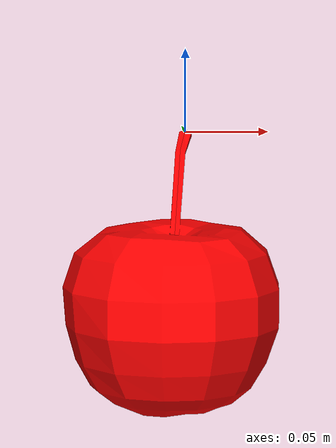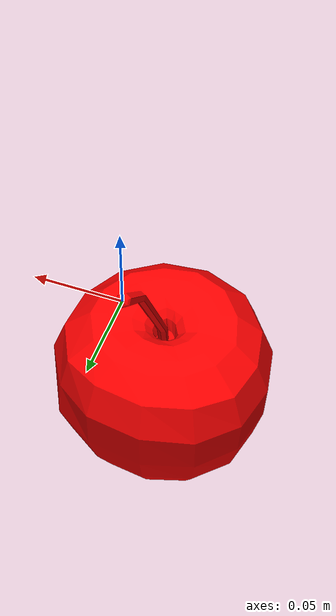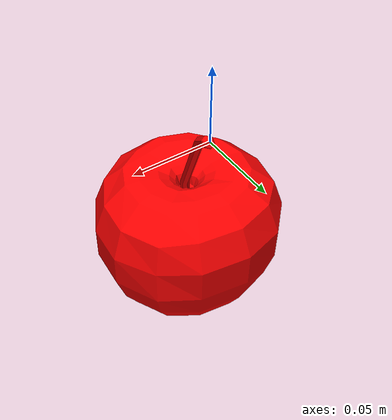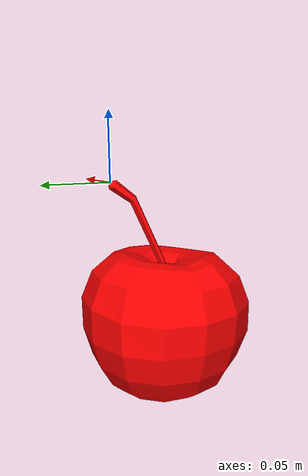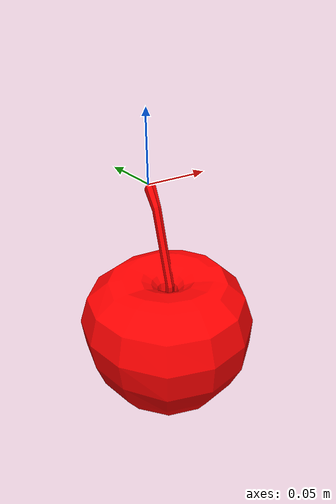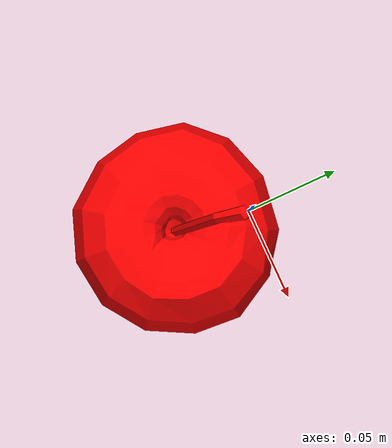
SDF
<?xml version="1.0" ?>
<sdf version="1.5">
  <model name="apple">
    <static>true</static>
    <link name="link">
      <pose>0 0 0 0 0 0</pose>
      <visual name="visual">
        <geometry>
          <mesh>
            <uri>model://apple/meshes/apple.stl</uri>
            <scale>0.5 0.5 0.5</scale>
          </mesh>
        </geometry>
        <material>
          <ambient>1 0 0 1</ambient>
          <diffuse>1 0 0 1</diffuse>
          <specular>0.1 0.1 0.1 1</specular>
          <emissive>0 0 0 0</emissive>
        </material>
      </visual>
    </link>
  </model>
</sdf>
